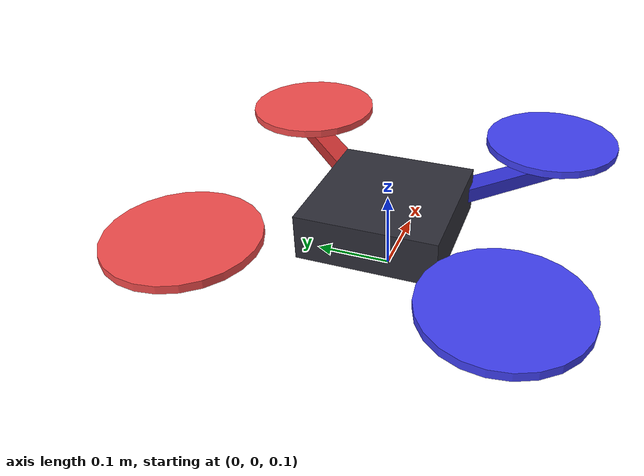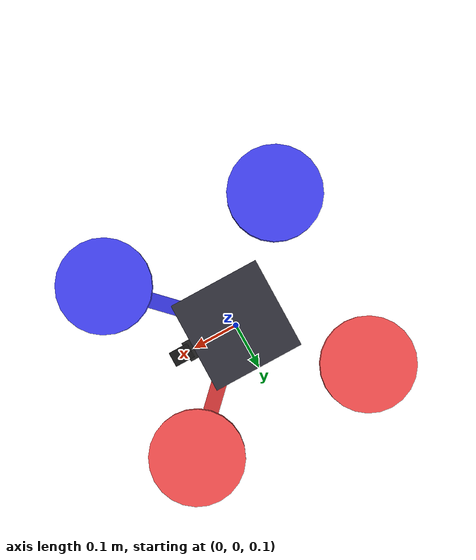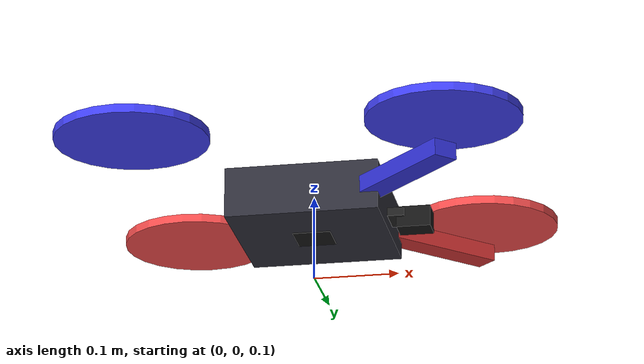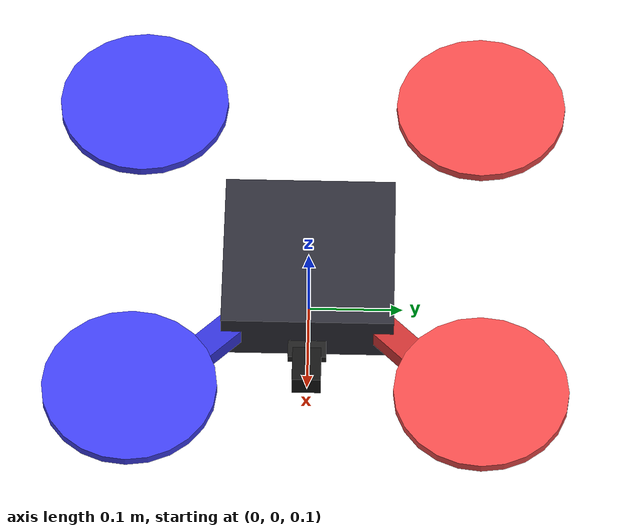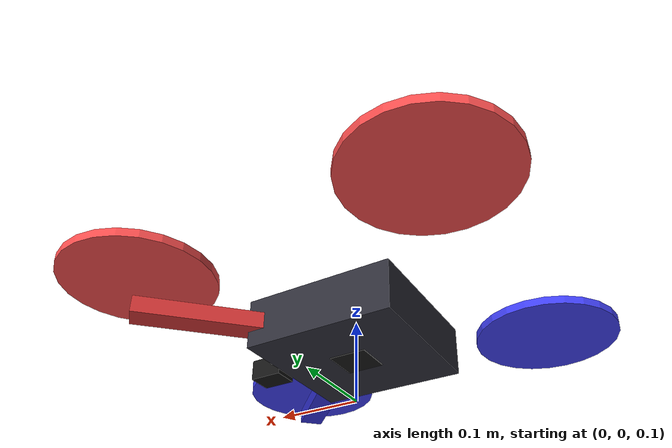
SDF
<?xml version="1.0"?>
<sdf version="1.9">
  <model name="quadcopter">
    <static>false</static>
    <pose>0 0 0.18 0 0 0</pose>

    <link name="base_link">
      <pose>0 0 0 0 0 0</pose>
      <inertial>
        <mass>1.0</mass>
        <inertia>
          <ixx>0.021</ixx>
          <iyy>0.021</iyy>
          <izz>0.038</izz>
          <ixy>0.0</ixy>
          <ixz>0.0</ixz>
          <iyz>0.0</iyz>
        </inertia>
      </inertial>

      <collision name="body_collision">
        <geometry>
          <box>
            <size>0.18 0.18 0.06</size>
          </box>
        </geometry>
      </collision>

      <visual name="body_visual">
        <geometry>
          <box>
            <size>0.18 0.18 0.06</size>
          </box>
        </geometry>
        <material>
          <ambient>0.15 0.15 0.18 1</ambient>
          <diffuse>0.18 0.18 0.22 1</diffuse>
          <specular>0.05 0.05 0.05 1</specular>
        </material>
      </visual>

      <visual name="arm_front_left">
        <pose>0.09 0.09 0 0 0 0.785398</pose>
        <geometry>
          <box>
            <size>0.26 0.03 0.02</size>
          </box>
        </geometry>
        <material>
          <ambient>0.7 0.15 0.15 1</ambient>
          <diffuse>0.8 0.2 0.2 1</diffuse>
        </material>
      </visual>

      <visual name="arm_front_right">
        <pose>0.09 -0.09 0 0 0 -0.785398</pose>
        <geometry>
          <box>
            <size>0.26 0.03 0.02</size>
          </box>
        </geometry>
        <material>
          <ambient>0.15 0.15 0.7 1</ambient>
          <diffuse>0.2 0.2 0.85 1</diffuse>
        </material>
      </visual>

      <visual name="camera_mount_visual">
        <pose>0.085 0 -0.01 0 0 0</pose>
        <geometry>
          <box>
            <size>0.05 0.04 0.01</size>
          </box>
        </geometry>
        <material>
          <ambient>0.08 0.08 0.08 1</ambient>
          <diffuse>0.12 0.12 0.12 1</diffuse>
        </material>
      </visual>

      <visual name="camera_body_visual">
        <pose>0.12 0 -0.015 0 0 0</pose>
        <geometry>
          <box>
            <size>0.04 0.03 0.025</size>
          </box>
        </geometry>
        <material>
          <ambient>0.04 0.04 0.04 1</ambient>
          <diffuse>0.08 0.08 0.08 1</diffuse>
        </material>
      </visual>

      <visual name="down_camera_mount_visual">
        <pose>0 0 -0.026 0 0 0</pose>
        <geometry>
          <box>
            <size>0.045 0.045 0.01</size>
          </box>
        </geometry>
        <material>
          <ambient>0.05 0.05 0.05 1</ambient>
          <diffuse>0.09 0.09 0.09 1</diffuse>
        </material>
      </visual>

      <sensor name="imu_sensor" type="imu">
        <always_on>true</always_on>
        <update_rate>250</update_rate>
        <visualize>false</visualize>
        <imu>
          <enable_orientation>false</enable_orientation>
          <angular_velocity>
            <x>
              <noise type="gaussian">
                <mean>0.0</mean>
                <stddev>0.003</stddev>
              </noise>
            </x>
            <y>
              <noise type="gaussian">
                <mean>0.0</mean>
                <stddev>0.003</stddev>
              </noise>
            </y>
            <z>
              <noise type="gaussian">
                <mean>0.0</mean>
                <stddev>0.003</stddev>
              </noise>
            </z>
          </angular_velocity>
          <linear_acceleration>
            <x>
              <noise type="gaussian">
                <mean>0.0</mean>
                <stddev>0.05</stddev>
              </noise>
            </x>
            <y>
              <noise type="gaussian">
                <mean>0.0</mean>
                <stddev>0.05</stddev>
              </noise>
            </y>
            <z>
              <noise type="gaussian">
                <mean>0.0</mean>
                <stddev>0.05</stddev>
              </noise>
            </z>
          </linear_acceleration>
        </imu>
      </sensor>

      <sensor name="barometer" type="air_pressure">
        <always_on>true</always_on>
        <update_rate>30</update_rate>
        <visualize>false</visualize>
        <air_pressure>
          <reference_altitude>0.0</reference_altitude>
          <pressure>
            <noise type="gaussian">
              <mean>0.0</mean>
              <stddev>1.5</stddev>
            </noise>
          </pressure>
        </air_pressure>
      </sensor>

      <sensor name="front_camera" type="camera">
        <pose>0.12 0 -0.015 0 0.15 0</pose>
        <always_on>true</always_on>
        <update_rate>30</update_rate>
        <visualize>false</visualize>
        <camera name="front_camera">
          <horizontal_fov>1.3962634</horizontal_fov>
          <lens>
            <intrinsics>
              <fx>381.36112213134766</fx>
              <fy>381.361141204834</fy>
              <cx>320.0</cx>
              <cy>240.0</cy>
              <s>0.0</s>
            </intrinsics>
          </lens>
          <distortion>
            <k1>0.0</k1>
            <k2>0.0</k2>
            <k3>0.0</k3>
            <p1>0.0</p1>
            <p2>0.0</p2>
            <center>0.5 0.5</center>
          </distortion>
          <image>
            <width>640</width>
            <height>480</height>
            <format>R8G8B8</format>
          </image>
          <clip>
            <near>0.08</near>
            <far>50.0</far>
          </clip>
          <noise>
            <type>gaussian</type>
            <mean>0.0</mean>
            <stddev>0.006</stddev>
          </noise>
        </camera>
      </sensor>

      <sensor name="down_camera" type="camera">
        <pose>0 0 -0.09 0 1.57079632679 0</pose>
        <always_on>true</always_on>
        <update_rate>45</update_rate>
        <visualize>false</visualize>
        <camera name="down_camera">
          <horizontal_fov>1.22173048</horizontal_fov>
          <lens>
            <intrinsics>
              <fx>415.69219381653056</fx>
              <fy>415.69219381653056</fy>
              <cx>320.0</cx>
              <cy>240.0</cy>
              <s>0.0</s>
            </intrinsics>
          </lens>
          <distortion>
            <k1>0.0</k1>
            <k2>0.0</k2>
            <k3>0.0</k3>
            <p1>0.0</p1>
            <p2>0.0</p2>
            <center>0.5 0.5</center>
          </distortion>
          <image>
            <width>640</width>
            <height>480</height>
            <format>R8G8B8</format>
          </image>
          <clip>
            <near>0.05</near>
            <far>25.0</far>
          </clip>
          <noise>
            <type>gaussian</type>
            <mean>0.0</mean>
            <stddev>0.004</stddev>
          </noise>
        </camera>
      </sensor>
    </link>

    <link name="rotor_front_left">
      <pose>0.18 0.18 0.04 0 0 0</pose>
      <inertial>
        <mass>0.02</mass>
        <inertia>
          <ixx>0.00002</ixx>
          <iyy>0.00002</iyy>
          <izz>0.00004</izz>
          <ixy>0.0</ixy>
          <ixz>0.0</ixz>
          <iyz>0.0</iyz>
        </inertia>
      </inertial>
      <collision name="collision">
        <geometry>
          <cylinder>
            <radius>0.09</radius>
            <length>0.01</length>
          </cylinder>
        </geometry>
      </collision>
      <visual name="visual">
        <geometry>
          <cylinder>
            <radius>0.09</radius>
            <length>0.01</length>
          </cylinder>
        </geometry>
        <material>
          <ambient>0.85 0.25 0.25 1</ambient>
          <diffuse>0.95 0.3 0.3 1</diffuse>
        </material>
      </visual>
    </link>

    <joint name="rotor_front_left_joint" type="revolute">
      <parent>base_link</parent>
      <child>rotor_front_left</child>
      <axis>
        <xyz>0 0 1</xyz>
        <limit>
          <lower>-1e16</lower>
          <upper>1e16</upper>
        </limit>
      </axis>
    </joint>

    <link name="rotor_front_right">
      <pose>0.18 -0.18 0.04 0 0 0</pose>
      <inertial>
        <mass>0.02</mass>
        <inertia>
          <ixx>0.00002</ixx>
          <iyy>0.00002</iyy>
          <izz>0.00004</izz>
          <ixy>0.0</ixy>
          <ixz>0.0</ixz>
          <iyz>0.0</iyz>
        </inertia>
      </inertial>
      <collision name="collision">
        <geometry>
          <cylinder>
            <radius>0.09</radius>
            <length>0.01</length>
          </cylinder>
        </geometry>
      </collision>
      <visual name="visual">
        <geometry>
          <cylinder>
            <radius>0.09</radius>
            <length>0.01</length>
          </cylinder>
        </geometry>
        <material>
          <ambient>0.2 0.2 0.85 1</ambient>
          <diffuse>0.25 0.25 0.95 1</diffuse>
        </material>
      </visual>
    </link>

    <joint name="rotor_front_right_joint" type="revolute">
      <parent>base_link</parent>
      <child>rotor_front_right</child>
      <axis>
        <xyz>0 0 1</xyz>
        <limit>
          <lower>-1e16</lower>
          <upper>1e16</upper>
        </limit>
      </axis>
    </joint>

    <link name="rotor_rear_right">
      <pose>-0.18 -0.18 0.04 0 0 0</pose>
      <inertial>
        <mass>0.02</mass>
        <inertia>
          <ixx>0.00002</ixx>
          <iyy>0.00002</iyy>
          <izz>0.00004</izz>
          <ixy>0.0</ixy>
          <ixz>0.0</ixz>
          <iyz>0.0</iyz>
        </inertia>
      </inertial>
      <collision name="collision">
        <geometry>
          <cylinder>
            <radius>0.09</radius>
            <length>0.01</length>
          </cylinder>
        </geometry>
      </collision>
      <visual name="visual">
        <geometry>
          <cylinder>
            <radius>0.09</radius>
            <length>0.01</length>
          </cylinder>
        </geometry>
        <material>
          <ambient>0.2 0.2 0.85 1</ambient>
          <diffuse>0.25 0.25 0.95 1</diffuse>
        </material>
      </visual>
    </link>

    <joint name="rotor_rear_right_joint" type="revolute">
      <parent>base_link</parent>
      <child>rotor_rear_right</child>
      <axis>
        <xyz>0 0 1</xyz>
        <limit>
          <lower>-1e16</lower>
          <upper>1e16</upper>
        </limit>
      </axis>
    </joint>

    <link name="rotor_rear_left">
      <pose>-0.18 0.18 0.04 0 0 0</pose>
      <inertial>
        <mass>0.02</mass>
        <inertia>
          <ixx>0.00002</ixx>
          <iyy>0.00002</iyy>
          <izz>0.00004</izz>
          <ixy>0.0</ixy>
          <ixz>0.0</ixz>
          <iyz>0.0</iyz>
        </inertia>
      </inertial>
      <collision name="collision">
        <geometry>
          <cylinder>
            <radius>0.09</radius>
            <length>0.01</length>
          </cylinder>
        </geometry>
      </collision>
      <visual name="visual">
        <geometry>
          <cylinder>
            <radius>0.09</radius>
            <length>0.01</length>
          </cylinder>
        </geometry>
        <material>
          <ambient>0.85 0.25 0.25 1</ambient>
          <diffuse>0.95 0.3 0.3 1</diffuse>
        </material>
      </visual>
    </link>

    <joint name="rotor_rear_left_joint" type="revolute">
      <parent>base_link</parent>
      <child>rotor_rear_left</child>
      <axis>
        <xyz>0 0 1</xyz>
        <limit>
          <lower>-1e16</lower>
          <upper>1e16</upper>
        </limit>
      </axis>
    </joint>

    <plugin filename="gz-sim8-multicopter-motor-model-system" name="gz::sim::systems::MulticopterMotorModel">
      <robotNamespace>quadcopter</robotNamespace>
      <jointName>rotor_front_left_joint</jointName>
      <linkName>rotor_front_left</linkName>
      <turningDirection>ccw</turningDirection>
      <timeConstantUp>0.0125</timeConstantUp>
      <timeConstantDown>0.025</timeConstantDown>
      <maxRotVelocity>900.0</maxRotVelocity>
      <motorConstant>8.54858e-06</motorConstant>
      <momentConstant>0.016</momentConstant>
      <commandSubTopic>command/motor_speed</commandSubTopic>
      <actuator_number>0</actuator_number>
      <motorNumber>0</motorNumber>
      <rotorDragCoefficient>8.06428e-04</rotorDragCoefficient>
      <rollingMomentCoefficient>1.0e-06</rollingMomentCoefficient>
      <rotorVelocitySlowdownSim>10.0</rotorVelocitySlowdownSim>
      <motorType>velocity</motorType>
    </plugin>

    <plugin filename="gz-sim8-multicopter-motor-model-system" name="gz::sim::systems::MulticopterMotorModel">
      <robotNamespace>quadcopter</robotNamespace>
      <jointName>rotor_front_right_joint</jointName>
      <linkName>rotor_front_right</linkName>
      <turningDirection>cw</turningDirection>
      <timeConstantUp>0.0125</timeConstantUp>
      <timeConstantDown>0.025</timeConstantDown>
      <maxRotVelocity>900.0</maxRotVelocity>
      <motorConstant>8.54858e-06</motorConstant>
      <momentConstant>0.016</momentConstant>
      <commandSubTopic>command/motor_speed</commandSubTopic>
      <actuator_number>1</actuator_number>
      <motorNumber>1</motorNumber>
      <rotorDragCoefficient>8.06428e-04</rotorDragCoefficient>
      <rollingMomentCoefficient>1.0e-06</rollingMomentCoefficient>
      <rotorVelocitySlowdownSim>10.0</rotorVelocitySlowdownSim>
      <motorType>velocity</motorType>
    </plugin>

    <plugin filename="gz-sim8-multicopter-motor-model-system" name="gz::sim::systems::MulticopterMotorModel">
      <robotNamespace>quadcopter</robotNamespace>
      <jointName>rotor_rear_right_joint</jointName>
      <linkName>rotor_rear_right</linkName>
      <turningDirection>ccw</turningDirection>
      <timeConstantUp>0.0125</timeConstantUp>
      <timeConstantDown>0.025</timeConstantDown>
      <maxRotVelocity>900.0</maxRotVelocity>
      <motorConstant>8.54858e-06</motorConstant>
      <momentConstant>0.016</momentConstant>
      <commandSubTopic>command/motor_speed</commandSubTopic>
      <actuator_number>2</actuator_number>
      <motorNumber>2</motorNumber>
      <rotorDragCoefficient>8.06428e-04</rotorDragCoefficient>
      <rollingMomentCoefficient>1.0e-06</rollingMomentCoefficient>
      <rotorVelocitySlowdownSim>10.0</rotorVelocitySlowdownSim>
      <motorType>velocity</motorType>
    </plugin>

    <plugin filename="gz-sim8-multicopter-motor-model-system" name="gz::sim::systems::MulticopterMotorModel">
      <robotNamespace>quadcopter</robotNamespace>
      <jointName>rotor_rear_left_joint</jointName>
      <linkName>rotor_rear_left</linkName>
      <turningDirection>cw</turningDirection>
      <timeConstantUp>0.0125</timeConstantUp>
      <timeConstantDown>0.025</timeConstantDown>
      <maxRotVelocity>900.0</maxRotVelocity>
      <motorConstant>8.54858e-06</motorConstant>
      <momentConstant>0.016</momentConstant>
      <commandSubTopic>command/motor_speed</commandSubTopic>
      <actuator_number>3</actuator_number>
      <motorNumber>3</motorNumber>
      <rotorDragCoefficient>8.06428e-04</rotorDragCoefficient>
      <rollingMomentCoefficient>1.0e-06</rollingMomentCoefficient>
      <rotorVelocitySlowdownSim>10.0</rotorVelocitySlowdownSim>
      <motorType>velocity</motorType>
    </plugin>
  </model>
</sdf>
